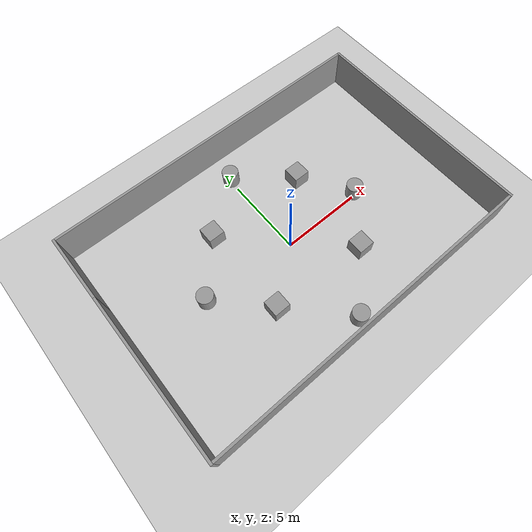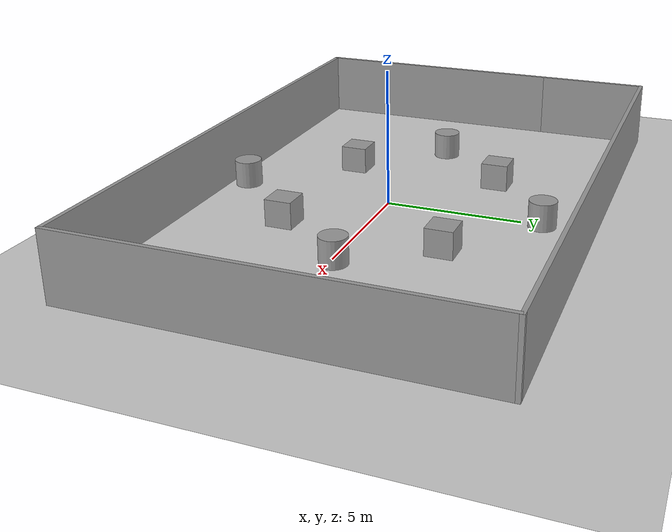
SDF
<sdf version="1.7">
 <world name="default">
  <light name="sun" type="directional">
   <pose>0 0 10 0 -0 0</pose>
   <diffuse>0.8 0.8 0.8 1</diffuse>
   <specular>0.2 0.2 0.2 1</specular>
   <attenuation>
    <range>1000</range>
    <constant>0.9</constant>
    <linear>0.01</linear>
    <quadratic>0.001</quadratic>
   </attenuation>
   <direction>-0.5 0.1 -0.9</direction>
   <spot><inner_angle>0</inner_angle><outer_angle>0</outer_angle><falloff>0</falloff></spot>
  </light>
  <model name="ground_plane">
   <static>1</static>
   <link name="link">
    <collision name="collision">
     <geometry><plane><normal>0 0 1</normal><size>100 100</size></plane></geometry>
     <surface><friction><ode><mu>100</mu><mu2>50</mu2></ode></friction></surface>
    </collision>
    <visual name="visual">
     <cast_shadows>0</cast_shadows>
     <geometry><plane><normal>0 0 1</normal><size>100 100</size></plane></geometry>
     <material>
      <script><uri>file://media/materials/scripts/gazebo.material</uri><name>Gazebo/Grey</name></script>
     </material>
    </visual>
   </link>
  </model>
  <gravity>0 0 -9.8</gravity>
  <magnetic_field>6e-06 2.3e-05 -4.2e-05</magnetic_field>
  <atmosphere type="adiabatic"/>
  <physics type="ode">
   <max_step_size>0.001</max_step_size>
   <real_time_factor>1</real_time_factor>
   <real_time_update_rate>1000</real_time_update_rate>
  </physics>
  <scene><ambient>0.4 0.4 0.4 1</ambient><background>0.7 0.7 0.7 1</background><shadows>1</shadows></scene>
  <audio><device>default</device></audio>
  <spherical_coordinates>
   <surface_model>EARTH_WGS84</surface_model>
   <latitude_deg>0</latitude_deg>
   <longitude_deg>0</longitude_deg>
   <elevation>0</elevation>
   <heading_deg>0</heading_deg>
  </spherical_coordinates>
  <model name="unit_box">
   <pose>3.24195 3.17507 0.499995 -1e-05 -0 -0</pose>
   <link name="link">
    <inertial>
     <mass>1</mass>
     <inertia>
      <ixx>0.166667</ixx>
      <ixy>0</ixy>
      <ixz>0</ixz>
      <iyy>0.166667</iyy>
      <iyz>0</iyz>
      <izz>0.166667</izz>
     </inertia>
    </inertial>
    <collision name="collision"><geometry><box><size>1 1 1</size></box></geometry></collision>
    <visual name="visual">
     <geometry><box><size>1 1 1</size></box></geometry>
     <material>
      <script><name>Gazebo/Grey</name><uri>file://media/materials/scripts/gazebo.material</uri></script>
     </material>
    </visual>
   </link>
  </model>
  <model name="unit_box_0">
   <pose>2.9137 -2.77053 0.499995 0 1e-05 0</pose>
   <link name="link">
    <inertial>
     <mass>1</mass>
     <inertia>
      <ixx>0.166667</ixx>
      <ixy>0</ixy>
      <ixz>0</ixz>
      <iyy>0.166667</iyy>
      <iyz>0</iyz>
      <izz>0.166667</izz>
     </inertia>
    </inertial>
    <collision name="collision"><geometry><box><size>1 1 1</size></box></geometry></collision>
    <visual name="visual">
     <geometry><box><size>1 1 1</size></box></geometry>
     <material>
      <script><name>Gazebo/Grey</name><uri>file://media/materials/scripts/gazebo.material</uri></script>
     </material>
    </visual>
   </link>
  </model>
  <model name="unit_box_1">
   <pose>-3.12944 3.27007 0.499995 -1e-05 -0 -0</pose>
   <link name="link">
    <inertial>
     <mass>1</mass>
     <inertia>
      <ixx>0.166667</ixx>
      <ixy>0</ixy>
      <ixz>0</ixz>
      <iyy>0.166667</iyy>
      <iyz>0</iyz>
      <izz>0.166667</izz>
     </inertia>
    </inertial>
    <collision name="collision"><geometry><box><size>1 1 1</size></box></geometry></collision>
    <visual name="visual">
     <geometry><box><size>1 1 1</size></box></geometry>
     <material>
      <script><name>Gazebo/Grey</name><uri>file://media/materials/scripts/gazebo.material</uri></script>
     </material>
    </visual>
   </link>
  </model>
  <model name="unit_box_2">
   <pose>-3.05415 -2.46011 0.499995 0 1e-05 0</pose>
   <link name="link">
    <inertial>
     <mass>1</mass>
     <inertia>
      <ixx>0.166667</ixx>
      <ixy>0</ixy>
      <ixz>0</ixz>
      <iyy>0.166667</iyy>
      <iyz>0</iyz>
      <izz>0.166667</izz>
     </inertia>
    </inertial>
    <collision name="collision"><geometry><box><size>1 1 1</size></box></geometry></collision>
    <visual name="visual">
     <geometry><box><size>1 1 1</size></box></geometry>
     <material>
      <script><name>Gazebo/Grey</name><uri>file://media/materials/scripts/gazebo.material</uri></script>
     </material>
    </visual>
   </link>
  </model>
  <model name="unit_cylinder">
   <pose>5.25612 0.163045 0.499998 3e-06 -4e-06 0</pose>
   <link name="link">
    <inertial>
     <mass>1</mass>
     <inertia><ixx>0.145833</ixx><ixy>0</ixy><ixz>0</ixz><iyy>0.145833</iyy><iyz>0</iyz><izz>0.125</izz></inertia>
    </inertial>
    <collision name="collision">
     <geometry><cylinder><radius>0.5</radius><length>1</length></cylinder></geometry>
    </collision>
    <visual name="visual">
     <geometry><cylinder><radius>0.5</radius><length>1</length></cylinder></geometry>
     <material>
      <script><name>Gazebo/Grey</name><uri>file://media/materials/scripts/gazebo.material</uri></script>
     </material>
    </visual>
   </link>
  </model>
  <model name="unit_cylinder_0">
   <pose>0.093804 5.76442 0.499992 -3e-06 -4e-06 -0</pose>
   <link name="link">
    <inertial>
     <mass>1</mass>
     <inertia><ixx>0.145833</ixx><ixy>0</ixy><ixz>0</ixz><iyy>0.145833</iyy><iyz>0</iyz><izz>0.125</izz></inertia>
    </inertial>
    <collision name="collision">
     <geometry><cylinder><radius>0.5</radius><length>1</length></cylinder></geometry>
    </collision>
    <visual name="visual">
     <geometry><cylinder><radius>0.5</radius><length>1</length></cylinder></geometry>
     <material>
      <script><name>Gazebo/Grey</name><uri>file://media/materials/scripts/gazebo.material</uri></script>
     </material>
    </visual>
   </link>
  </model>
  <model name="unit_cylinder_1">
   <pose>0.028232 -5.74033 0.499993 -3e-06 -3e-06 0</pose>
   <link name="link">
    <inertial>
     <mass>1</mass>
     <inertia><ixx>0.145833</ixx><ixy>0</ixy><ixz>0</ixz><iyy>0.145833</iyy><iyz>0</iyz><izz>0.125</izz></inertia>
    </inertial>
    <collision name="collision">
     <geometry><cylinder><radius>0.5</radius><length>1</length></cylinder></geometry>
    </collision>
    <visual name="visual">
     <geometry><cylinder><radius>0.5</radius><length>1</length></cylinder></geometry>
     <material>
      <script><name>Gazebo/Grey</name><uri>file://media/materials/scripts/gazebo.material</uri></script>
     </material>
    </visual>
   </link>
  </model>
  <model name="unit_cylinder_2">
   <pose>-5.72948 0.408282 0.499997 3e-06 4e-06 -0</pose>
   <link name="link">
    <inertial>
     <mass>1</mass>
     <inertia><ixx>0.145833</ixx><ixy>0</ixy><ixz>0</ixz><iyy>0.145833</iyy><iyz>0</iyz><izz>0.125</izz></inertia>
    </inertial>
    <collision name="collision">
     <geometry><cylinder><radius>0.5</radius><length>1</length></cylinder></geometry>
    </collision>
    <visual name="visual">
     <geometry><cylinder><radius>0.5</radius><length>1</length></cylinder></geometry>
     <material>
      <script><name>Gazebo/Grey</name><uri>file://media/materials/scripts/gazebo.material</uri></script>
     </material>
    </visual>
   </link>
  </model>
  <model name="Untitled">
   <pose>0.241733 0.524616 0 0 -0 0</pose>
   <link name="Wall_2">
    <collision name="Wall_2_Collision">
     <geometry><box><size>10 0.15 2.5</size></box></geometry>
     <pose>0 0 1.25 0 -0 0</pose>
    </collision>
    <visual name="Wall_2_Visual">
     <pose>0 0 1.25 0 -0 0</pose>
     <geometry><box><size>10 0.15 2.5</size></box></geometry>
     <material>
      <script><uri>file://media/materials/scripts/gazebo.material</uri><name>Gazebo/Grey</name></script>
      <ambient>1 1 1 1</ambient>
     </material>
     <meta><layer>0</layer></meta>
    </visual>
    <pose>-10.425 -2.125 0 0 -0 -1.5708</pose>
   </link>
   <link name="Wall_3">
    <collision name="Wall_3_Collision">
     <geometry><box><size>21 0.15 2.5</size></box></geometry>
     <pose>0 0 1.25 0 -0 0</pose>
    </collision>
    <visual name="Wall_3_Visual">
     <pose>0 0 1.25 0 -0 0</pose>
     <geometry><box><size>21 0.15 2.5</size></box></geometry>
     <material>
      <script><uri>file://media/materials/scripts/gazebo.material</uri><name>Gazebo/Grey</name></script>
      <ambient>1 1 1 1</ambient>
     </material>
     <meta><layer>0</layer></meta>
    </visual>
    <pose>0 -7.05 0 0 -0 0</pose>
   </link>
   <link name="Wall_4">
    <collision name="Wall_4_Collision">
     <geometry><box><size>14.25 0.15 2.5</size></box></geometry>
     <pose>0 0 1.25 0 -0 0</pose>
    </collision>
    <visual name="Wall_4_Visual">
     <pose>0 0 1.25 0 -0 0</pose>
     <geometry><box><size>14.25 0.15 2.5</size></box></geometry>
     <material>
      <script><uri>file://media/materials/scripts/gazebo.material</uri><name>Gazebo/Grey</name></script>
      <ambient>1 1 1 1</ambient>
     </material>
     <meta><layer>0</layer></meta>
    </visual>
    <pose>10.425 -0 0 0 -0 1.5708</pose>
   </link>
   <link name="Wall_5">
    <collision name="Wall_5_Collision">
     <geometry><box><size>21 0.15 2.5</size></box></geometry>
     <pose>0 0 1.25 0 -0 0</pose>
    </collision>
    <visual name="Wall_5_Visual">
     <pose>0 0 1.25 0 -0 0</pose>
     <geometry><box><size>21 0.15 2.5</size></box></geometry>
     <material>
      <script><uri>file://media/materials/scripts/gazebo.material</uri><name>Gazebo/Grey</name></script>
      <ambient>1 1 1 1</ambient>
     </material>
     <meta><layer>0</layer></meta>
    </visual>
    <pose>0 7.05 0 0 -0 3.14159</pose>
   </link>
   <link name="Wall_6">
    <collision name="Wall_6_Collision">
     <geometry><box><size>4.75 0.15 2.5</size></box></geometry>
     <pose>0 0 1.25 0 -0 0</pose>
    </collision>
    <visual name="Wall_6_Visual">
     <pose>0 0 1.25 0 -0 0</pose>
     <geometry><box><size>4.75 0.15 2.5</size></box></geometry>
     <material>
      <script><uri>file://media/materials/scripts/gazebo.material</uri><name>Gazebo/Grey</name></script>
      <ambient>1 1 1 1</ambient>
     </material>
     <meta><layer>0</layer></meta>
    </visual>
    <pose>-10.425 4.75 0 0 -0 -1.5708</pose>
   </link>
   <static>1</static>
  </model>
 </world>
</sdf>
